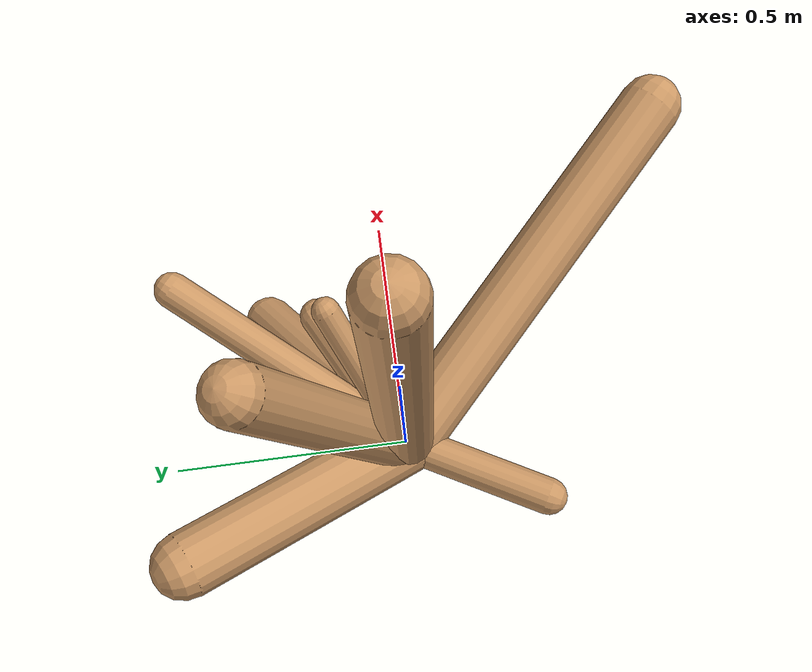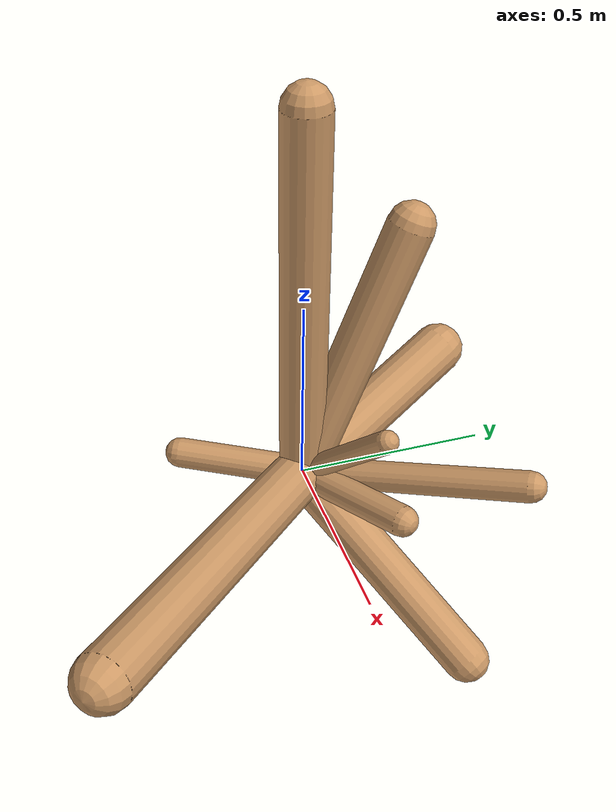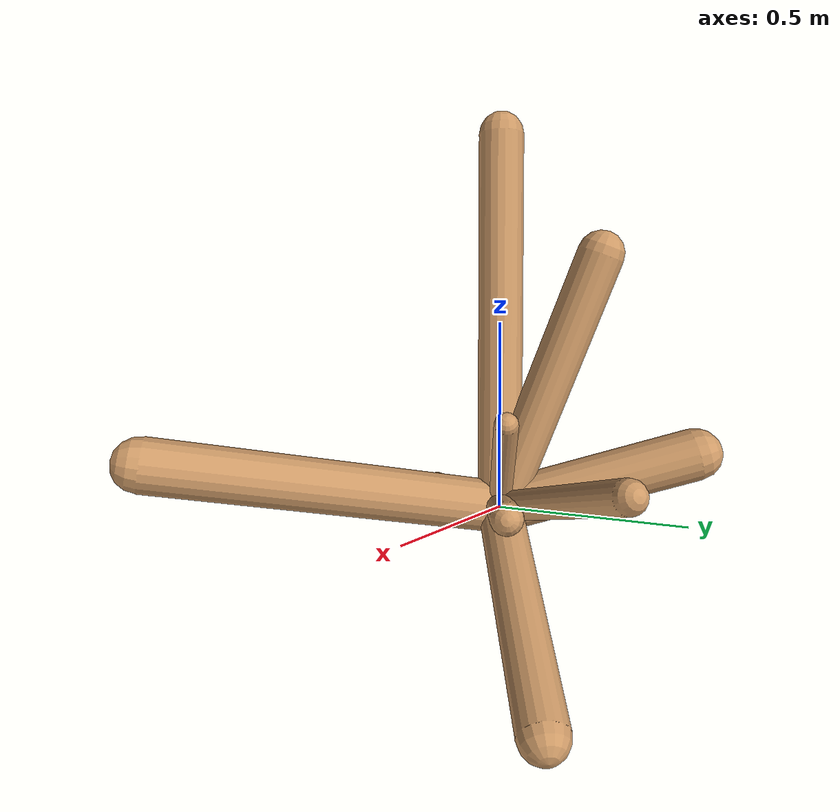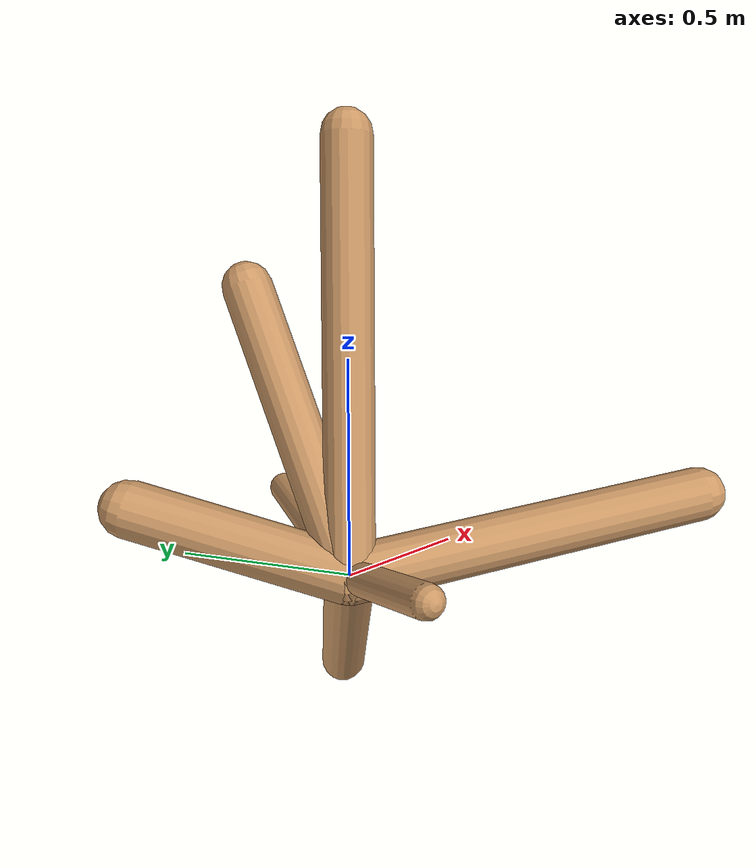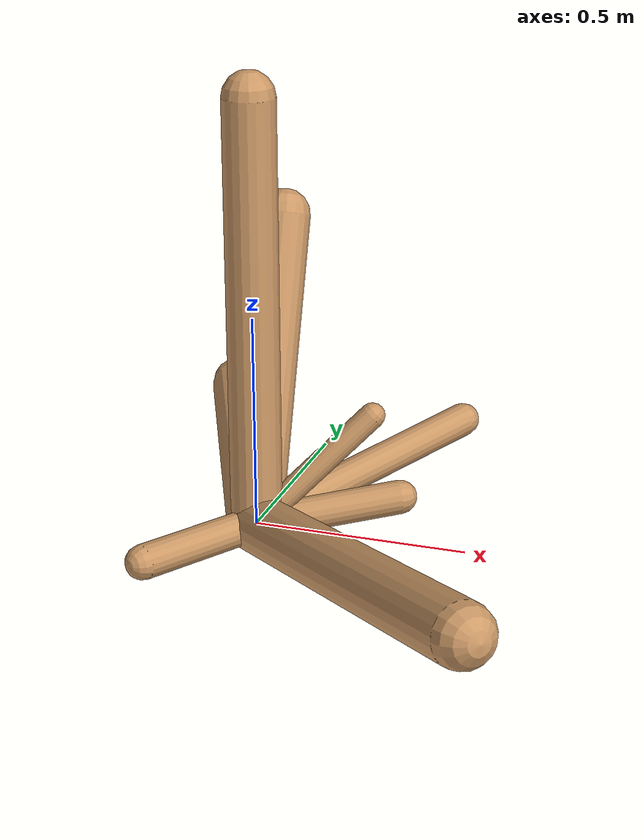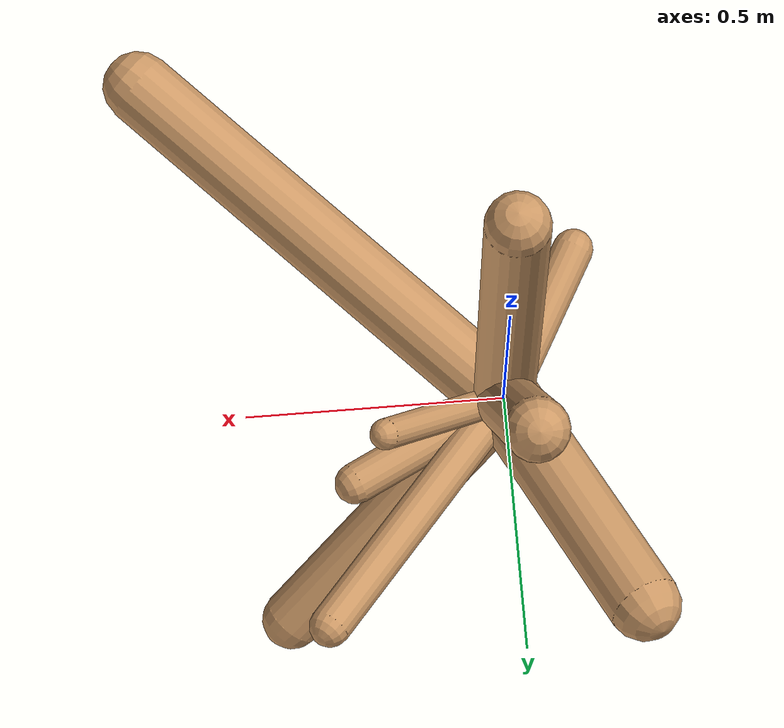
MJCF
<!--
                    joint_number: 8
                    -->
                    <mujoco model="randomrobot">
                        <compiler angle="degree" coordinate="global" inertiafromgeom="true"/>
                        <default>
                        <joint armature="0.01" damping=".1" limited="true"/>
                        <geom conaffinity="0" condim="3" contype="1" density="1000" friction="0.8 .1 .1" rgba="0.8 0.6 .4 1"/>
                        </default>
                        <option integrator="RK4" timestep="0.002"/>
                        <worldbody>
                    <body name='torso' pos='0.00 0.00 0.60'><geom fromto='0 0 0 0.00 0.00 1.00' name='torso_geom' size='0.06' type='capsule'/><inertial mass='0.3'/><body name='L0_D1' pos='0.00 0.00 0.94'><joint axis='1 0 0' name='L0_D1_joint' pos='0 0 0' range='50.76 134.19' type='hinge'/><geom fromto='0 0 0 -0.02 0.27 0.67' name='L0_D1_geom' size='0.06' type='capsule'/><inertial mass='0.3'/></body><body name='L1_D1' pos='0.00 0.00 0.31'><joint axis='0 0 1' name='L1_D1_joint' pos='0 0 0' range='121.12 148.76' type='hinge'/><geom fromto='0 0 0 0.66 -0.64 0.15' name='L1_D1_geom' size='0.07' type='capsule'/><inertial mass='0.3'/><body name='L2_D0' pos='0.09 -0.09 0.02'><joint axis='1 0 0' name='L2_D0_joint' pos='0 0 0' range='35.79 137.44' type='hinge'/><geom fromto='0 0 0 0.24 0.13 0.25' name='L2_D0_geom' size='0.03' type='capsule'/><inertial mass='0.3'/></body></body><body name='L3_D1' pos='0.00 0.00 0.61'><joint axis='0 0 1' name='L3_D1_joint' pos='0 0 0' range='30.98 150.00' type='hinge'/><geom fromto='0 0 0 0.30 0.16 0.04' name='L3_D1_geom' size='0.04' type='capsule'/><inertial mass='0.3'/><body name='L4_D0' pos='0.10 0.05 0.01'><joint axis='1 0 0' name='L4_D0_joint' pos='0 0 0' range='75.42 122.35' type='hinge'/><geom fromto='0 0 0 0.44 0.31 -0.37' name='L4_D0_geom' size='0.06' type='capsule'/><inertial mass='0.3'/></body><body name='L5_D0' pos='0.09 0.04 0.01'><joint axis='1 0 0' name='L5_D0_joint' pos='0 0 0' range='110.71 137.35' type='hinge'/><geom fromto='0 0 0 0.37 0.46 0.13' name='L5_D0_geom' size='0.04' type='capsule'/><inertial mass='0.3'/></body><body name='L6_D0' pos='0.19 0.10 0.02'><joint axis='0 1 0' name='L6_D0_joint' pos='0 0 0' range='107.55 169.20' type='hinge'/><geom fromto='0 0 0 -0.22 0.47 0.15' name='L6_D0_geom' size='0.07' type='capsule'/><inertial mass='0.3'/></body></body><body name='L7_D1' pos='0.00 0.00 0.44'><joint axis='0 0 1' name='L7_D1_joint' pos='0 0 0' range='56.99 121.38' type='hinge'/><geom fromto='0 0 0 -0.16 -0.29 0.01' name='L7_D1_geom' size='0.04' type='capsule'/><inertial mass='0.3'/></body></body>
                        </worldbody>
                    </mujoco>
